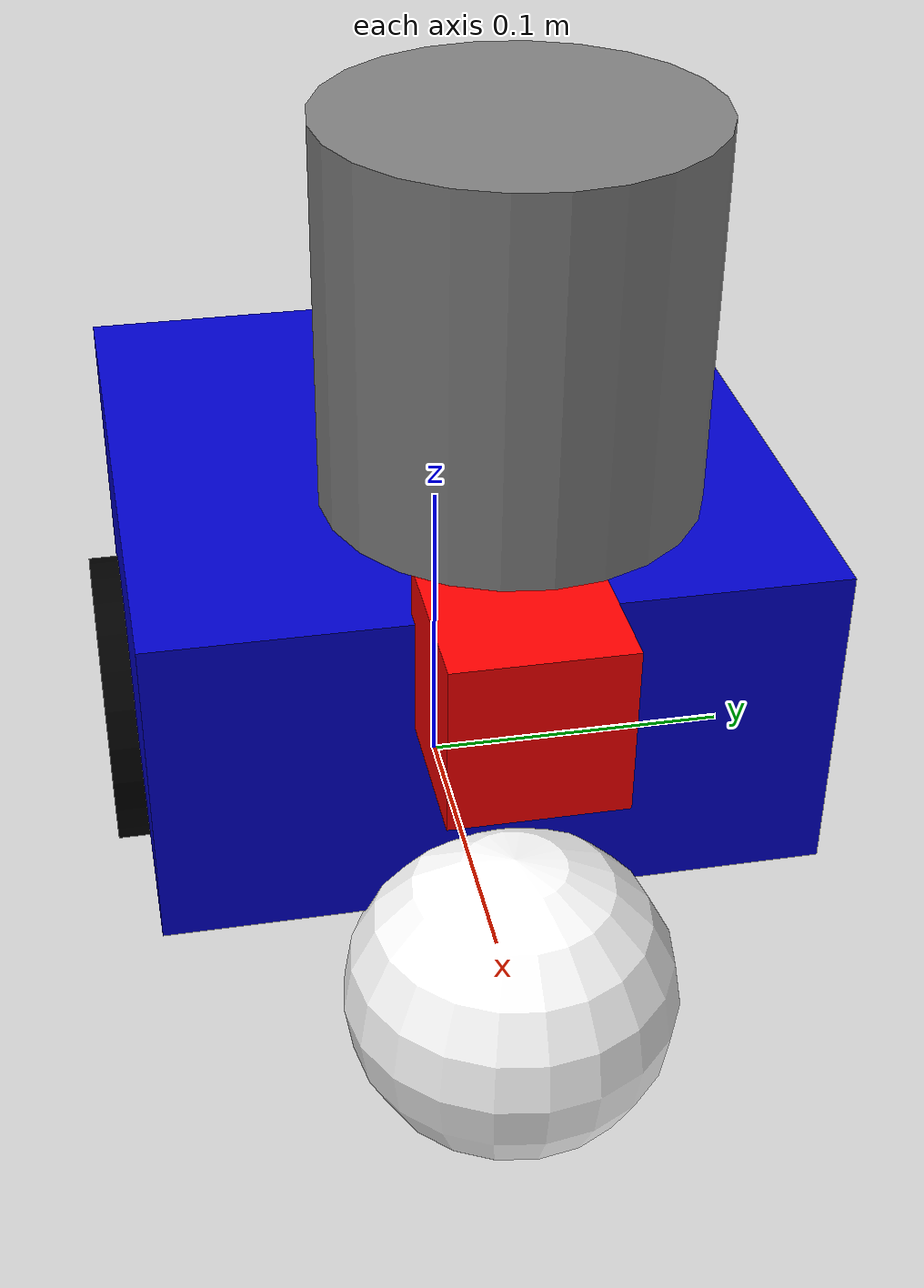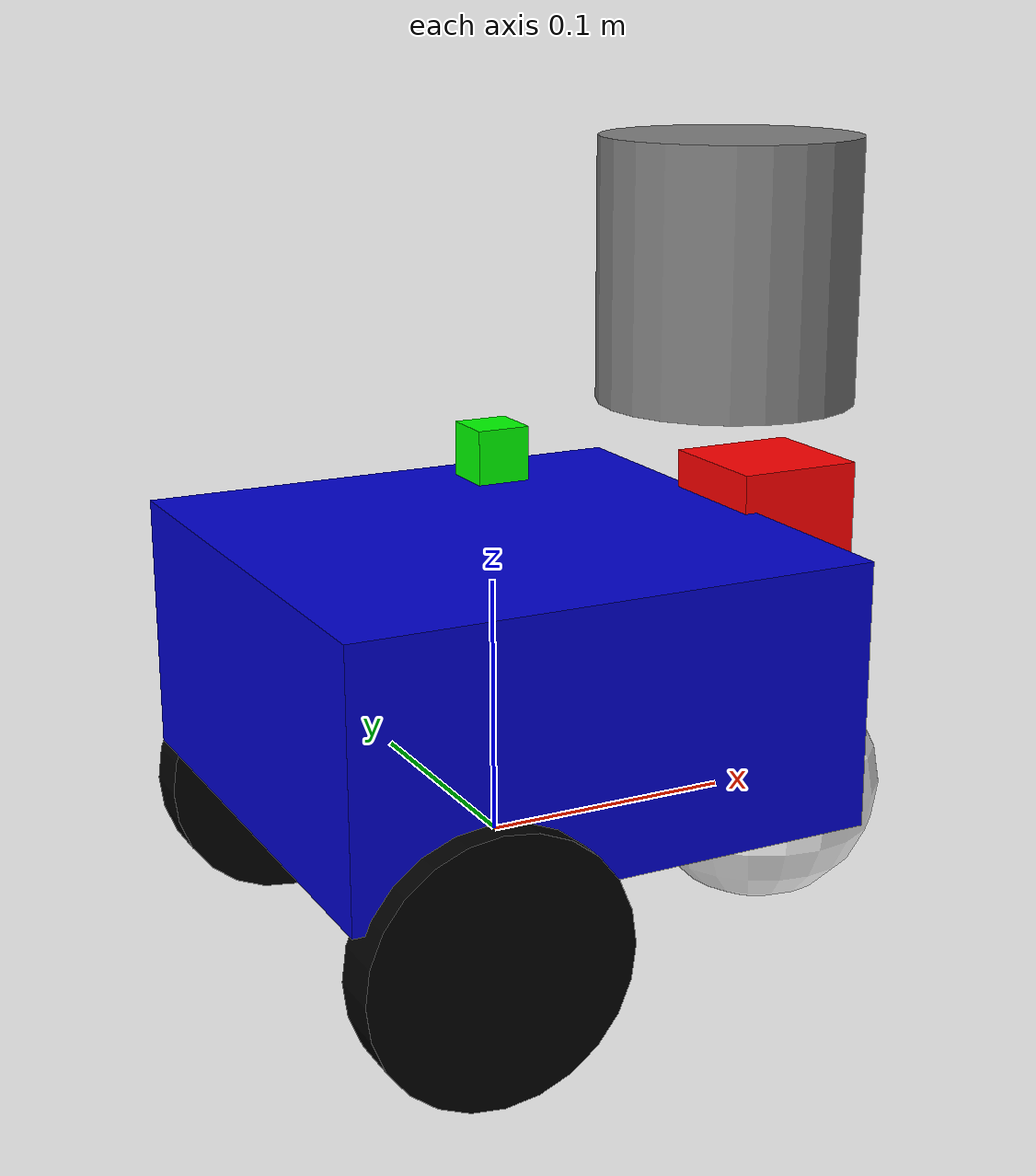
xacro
<?xml version="1.0"?>
<robot name="turtlebot3_waffle_pi_3d" xmlns:xacro="http://ros.org/wiki/xacro">

  <!-- 包含机器人描述 -->
  <xacro:include filename="turtlebot3_waffle_pi_3d_complete.urdf.xacro" />

  <!-- 包含Gazebo插件 -->
  <xacro:include filename="turtlebot3_waffle_pi_3d.gazebo" />

</robot>

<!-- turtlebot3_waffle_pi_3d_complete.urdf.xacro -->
<robot name="turtlebot3_waffle_pi_3d" xmlns:xacro="http://ros.org/wiki/xacro">

  <!-- 基本底盘 -->
  <link name="base_footprint"/>

  <link name="base_link">
    <inertial>
      <mass value="5.0" />
      <origin xyz="0 0 0.02" />
      <inertia ixx="0.3" ixy="0" ixz="0" iyy="0.3" iyz="0" izz="0.5" />
    </inertial>

    <visual>
      <origin xyz="0 0 0.02" rpy="0 0 0" />
      <geometry>
        <box size="0.2 0.2 0.1" />
      </geometry>
      <material name="Blue">
        <color rgba="0 0 0.8 1" />
      </material>
    </visual>

    <collision>
      <origin xyz="0 0 0.05" rpy="0 0 0" />
      <geometry>
        <box size="0.2 0.2 0.1" />
      </geometry>
    </collision>
  </link>

  <joint name="base_footprint_joint" type="fixed">
    <origin xyz="0 0 0.05" rpy="0 0 0" />
    <parent link="base_footprint" />
    <child link="base_link" />
  </joint>

  <!-- 左轮（驱动轮） -->
  <link name="left_wheel">
    <inertial>
      <mass value="0.3" />
      <origin xyz="0 0 0" />
      <inertia ixx="0.001" ixy="0" ixz="0" iyy="0.001" iyz="0" izz="0.001" />
    </inertial>

    <visual>
      <origin xyz="0 0 0" rpy="1.5708 0 0" />
      <geometry>
        <cylinder length="0.02" radius="0.05" />
      </geometry>
      <material name="Black">
        <color rgba="0 0 0 1" />
      </material>
    </visual>

    <collision>
      <origin xyz="0 0 0" rpy="1.5708 0 0" />
      <geometry>
        <cylinder length="0.02" radius="0.05" />
      </geometry>
    </collision>
  </link>

  <joint name="left_wheel_joint" type="continuous">
    <origin xyz="-0.05 0.1 -0.05" rpy="0 0 0" />
    <parent link="base_link" />
    <child link="left_wheel" />
    <axis xyz="0 1 0" />
  </joint>

  <!-- 右轮（驱动轮） -->
  <link name="right_wheel">
    <inertial>
      <mass value="0.3" />
      <origin xyz="0 0 0" />
      <inertia ixx="0.001" ixy="0" ixz="0" iyy="0.001" iyz="0" izz="0.001" />
    </inertial>

    <visual>
      <origin xyz="0 0 0" rpy="1.5708 0 0" />
      <geometry>
        <cylinder length="0.02" radius="0.05" />
      </geometry>
      <material name="Black">
        <color rgba="0 0 0 1" />
      </material>
    </visual>

    <collision>
      <origin xyz="0 0 0" rpy="1.5708 0 0" />
      <geometry>
        <cylinder length="0.02" radius="0.05" />
      </geometry>
    </collision>
  </link>

  <joint name="right_wheel_joint" type="continuous">
    <origin xyz="-0.05 -0.1 -0.05" rpy="0 0 0" />
    <parent link="base_link" />
    <child link="right_wheel" />
    <axis xyz="0 1 0" />
  </joint>

  <!-- 前支撑轮：修复版 - 光滑万向球 -->
  <link name="front_caster_wheel">
    <inertial>
      <mass value="0.1" /> <!-- 增加质量，提高稳定性 -->
      <origin xyz="0 0 0" />
      <inertia ixx="0.0001" ixy="0" ixz="0" iyy="0.0001" iyz="0" izz="0.0001" />
    </inertial>

    <visual>
      <origin xyz="0 0 0" rpy="0 0 0" />
      <geometry>
        <sphere radius="0.05" />
      </geometry>
      <material name="White">
        <color rgba="1 1 1 1" />
      </material>
    </visual>

    <!-- 【关键】碰撞体也使用球体 -->
    <collision>
      <origin xyz="0 0 0" rpy="0 0 0" />
      <geometry>
        <sphere radius="0.05" />
      </geometry>
    </collision>
  </link>

  <!-- 【关键】使用ball关节实现真正的全向旋转 -->
  <joint name="front_caster_joint" type="continuous">
    <origin xyz="0.12 0 -0.05" rpy="0 0 0" />
    <parent link="base_link" />
    <child link="front_caster_wheel" />
    <!-- 允许绕任意轴旋转 -->
    <axis xyz="1 0 0" />
  </joint>

  <!-- 3D雷达 -->
  <link name="velodyne_link">
    <inertial>
      <mass value="0.01" />
      <origin xyz="0 0 0" />
      <inertia ixx="0.001" ixy="0" ixz="0" iyy="0.001" iyz="0" izz="0.001" />
    </inertial>

    <visual>
      <origin xyz="0 0 0" rpy="0 0 0" />
      <geometry>
        <cylinder length="0.1" radius="0.05" />
      </geometry>
      <material name="Grey">
        <color rgba="0.5 0.5 0.5 1" />
      </material>
    </visual>

    <collision>
      <origin xyz="0 0 0" rpy="0 0 0" />
      <geometry>
        <cylinder length="0.1" radius="0.05" />
      </geometry>
    </collision>
  </link>

  <joint name="velodyne_joint" type="fixed">
    <origin xyz="0.1 0 0.16" rpy="0 0 0" />
    <parent link="base_link" />
    <child link="velodyne_link" />
  </joint>

  <!-- 左相机 -->
  <link name="left_camera_link">
    <inertial>
      <mass value="0.005" />
      <origin xyz="0 0 0" />
      <inertia ixx="0.0001" ixy="0" ixz="0" iyy="0.0001" iyz="0" izz="0.0001" />
    </inertial>

    <visual>
      <origin xyz="0 0 0" rpy="0 0 0" />
      <geometry>
        <box size="0.05 0.05 0.05" />
      </geometry>
      <material name="Red">
        <color rgba="1 0 0 1" />
      </material>
    </visual>

    <collision>
      <origin xyz="0 0 0" rpy="0 0 0" />
      <geometry>
        <box size="0.05 0.05 0.05" />
      </geometry>
    </collision>
  </link>

  <joint name="left_camera_joint" type="fixed">
    <origin xyz="0.12 0 0.06" rpy="0 0 0" />
    <parent link="base_link" />
    <child link="left_camera_link" />
  </joint>

  <!-- IMU -->
  <link name="imu_link">
    <inertial>
      <mass value="0.01" />
      <origin xyz="0 0 0" />
      <inertia ixx="0.00001" ixy="0" ixz="0" iyy="0.00001" iyz="0" izz="0.00001" />
    </inertial>

    <visual>
      <origin xyz="0 0 0" rpy="0 0 0" />
      <geometry>
        <box size="0.02 0.02 0.02" />
      </geometry>
      <material name="Green">
        <color rgba="0 1 0 1" />
      </material>
    </visual>

    <collision>
      <origin xyz="0 0 0" rpy="0 0 0" />
      <geometry>
        <box size="0.02 0.02 0.02" />
      </geometry>
    </collision>
  </link>

  <joint name="imu_joint" type="fixed">
    <origin xyz="0.0 0 0.1" rpy="0 0 0" />
    <parent link="base_link" />
    <child link="imu_link" />
  </joint>

</robot>
